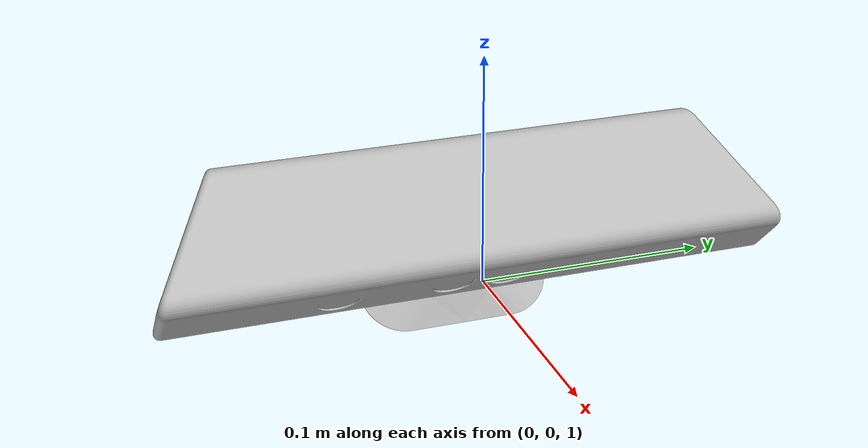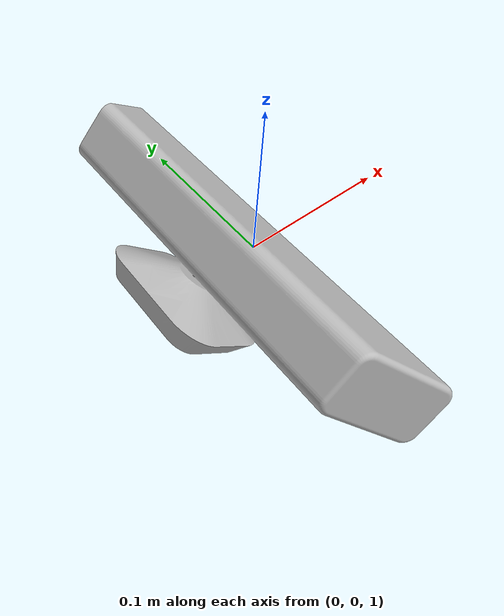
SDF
<?xml version="1.0" ?>
<sdf version="1.4">
  <world name="camera world">
    <include>
      <uri>model://ground_plane</uri>
    </include>
    <include>
      <uri>model://kinect_ros</uri>
      <name>camera</name>
      <pose>0.0 0.0 1.0 0 0.7853 0</pose>
    </include>
  </world>
</sdf>

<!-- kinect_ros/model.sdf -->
<sdf version="1.5">
  <model name="kinect_ros">
    <pose>0 0 0.36 0 0 0</pose>
    <link name="link">
			<gravity>0</gravity>
      <inertial>
        <mass>0.1</mass>
      </inertial>
      <collision name="collision">
        <geometry>
          <box>
            <size>0.073000 0.276000 0.072000</size>
          </box>
        </geometry>
      </collision>
      <visual name="visual">
        <geometry>
          <mesh>
            <uri>model://kinect/meshes/kinect.dae</uri>
          </mesh>
        </geometry>
      </visual>
      <sensor name="camera" type="depth">
        <update_rate>20</update_rate>
        <camera>
          <horizontal_fov>1.047198</horizontal_fov>
          <image>
            <width>640</width>
            <height>480</height>
            <format>R8G8B8</format>
          </image>
          <clip>
            <near>0.05</near>
            <far>3</far>
          </clip>
        </camera>
  	<plugin name="camera_plugin" filename="libgazebo_ros_openni_kinect.so">
          <baseline>0.2</baseline>
          <alwaysOn>true</alwaysOn>
          <updateRate>0.0</updateRate>
          <cameraName>camera_ir</cameraName>
          <imageTopicName>/camera/color/image_raw</imageTopicName>
          <cameraInfoTopicName>/camera/color/camera_info</cameraInfoTopicName>
          <depthImageTopicName>/camera/depth/image_raw</depthImageTopicName>
          <depthImageCameraInfoTopicName>/camera/depth/camera_info</depthImageCameraInfoTopicName>
          <pointCloudTopicName>/camera/depth/points</pointCloudTopicName>
          <frameName>camera_link</frameName>
          <pointCloudCutoff>0.5</pointCloudCutoff>
          <pointCloudCutoffMax>3.0</pointCloudCutoffMax>
          <distortionK1>0</distortionK1>
          <distortionK2>0</distortionK2>
          <distortionK3>0</distortionK3>
          <distortionT1>0</distortionT1>
          <distortionT2>0</distortionT2>
          <CxPrime>0</CxPrime>
          <Cx>0</Cx>
          <Cy>0</Cy>
          <focalLength>0</focalLength>
          <hackBaseline>0</hackBaseline>
        </plugin>
      </sensor>
    </link>
  </model>
</sdf>
